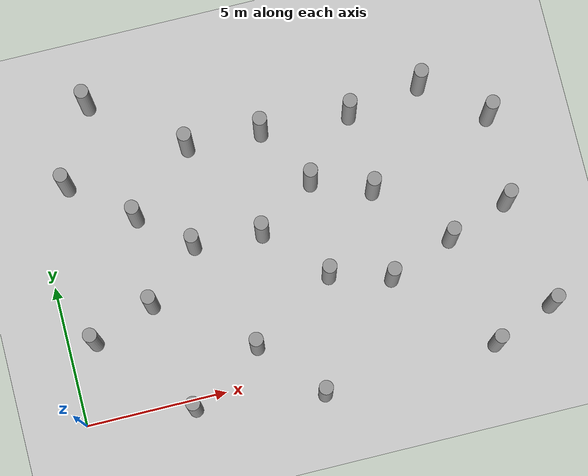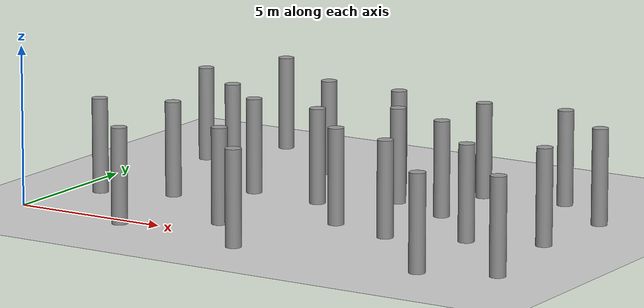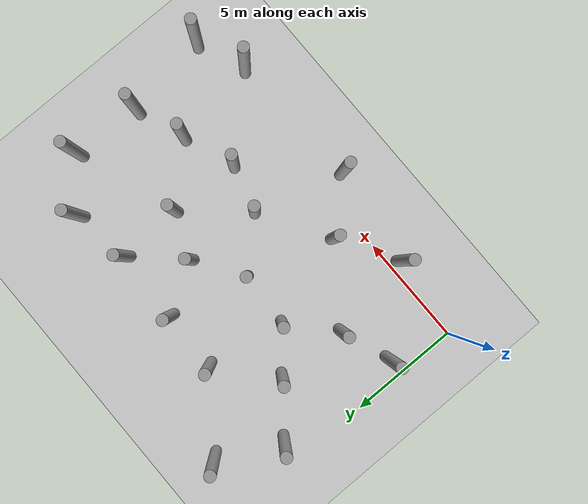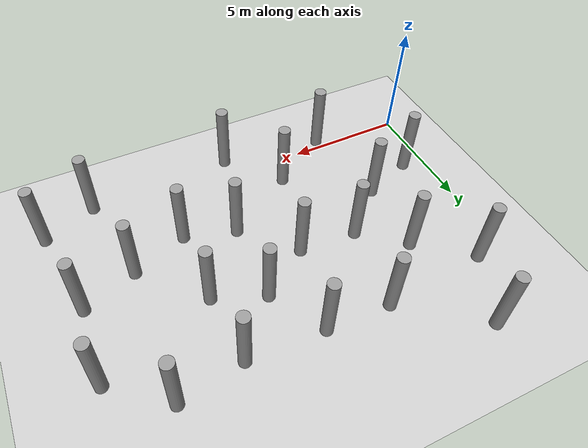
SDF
<sdf version="1.6">
 <world name="default">
  <model name="ground_plane">
   <static>1</static>
   <link name="link">
    <collision name="collision">
     <geometry><plane><normal>0 0 1</normal><size>100 100</size></plane></geometry>
     <surface><friction><ode><mu>100</mu><mu2>50</mu2></ode></friction></surface>
    </collision>
    <visual name="visual">
     <cast_shadows>0</cast_shadows>
     <geometry><plane><normal>0 0 1</normal><size>100 100</size></plane></geometry>
     <material>
      <script><uri>file://media/materials/scripts/gazebo.material</uri><name>Gazebo/Grey</name></script>
     </material>
    </visual>
   </link>
  </model>
  <model name="LjjForest">
   <link name="link_0_clone">
    <inertial>
     <mass>1</mass>
     <inertia><ixx>0.145833</ixx><ixy>0</ixy><ixz>0</ixz><iyy>0.145833</iyy><iyz>0</iyz><izz>0.125</izz></inertia>
    </inertial>
    <pose>-2.83119 0.981911 0 0 -0 0</pose>
    <visual name="visual">
     <geometry><cylinder><radius>0.25</radius><length>3</length></cylinder></geometry>
     <material>
      <lighting>1</lighting>
      <script><uri>file://media/materials/scripts/gazebo.material</uri><name>Gazebo/Grey</name></script>
      <shader type="vertex"><normal_map>__default__</normal_map></shader>
      <ambient>0.3 0.3 0.3 1</ambient>
      <diffuse>0.7 0.7 0.7 1</diffuse>
      <specular>0.01 0.01 0.01 1</specular>
      <emissive>0 0 0 1</emissive>
     </material>
    </visual>
    <collision name="collision">
     <geometry><cylinder><radius>0.25</radius><length>3</length></cylinder></geometry>
     <surface>
      <friction>
       <ode><mu>1</mu><mu2>1</mu2><fdir1>0 0 0</fdir1><slip1>0</slip1><slip2>0</slip2></ode>
       <torsional>
        <coefficient>1</coefficient>
        <patch_radius>0</patch_radius>
        <surface_radius>0</surface_radius>
        <use_patch_radius>1</use_patch_radius>
        <ode><slip>0</slip></ode>
       </torsional>
      </friction>
      <bounce><restitution_coefficient>0</restitution_coefficient><threshold>1e+06</threshold></bounce>
      <contact>
       <collide_without_contact>0</collide_without_contact>
       <collide_without_contact_bitmask>1</collide_without_contact_bitmask>
       <collide_bitmask>1</collide_bitmask>
       <ode>
        <soft_cfm>0</soft_cfm>
        <soft_erp>0.2</soft_erp>
        <kp>1e+13</kp>
        <kd>1</kd>
        <max_vel>0.01</max_vel>
        <min_depth>0</min_depth>
       </ode>
       <bullet>
        <split_impulse>1</split_impulse>
        <split_impulse_penetration_threshold>-0.01</split_impulse_penetration_threshold>
        <soft_cfm>0</soft_cfm>
        <soft_erp>0.2</soft_erp>
        <kp>1e+13</kp>
        <kd>1</kd>
       </bullet>
      </contact>
     </surface>
    </collision>
   </link>
   <link name="link_0_clone_0">
    <inertial>
     <mass>1</mass>
     <inertia><ixx>0.145833</ixx><ixy>0</ixy><ixz>0</ixz><iyy>0.145833</iyy><iyz>0</iyz><izz>0.125</izz></inertia>
    </inertial>
    <pose>-0.25253 2.5682 0 0 -0 0</pose>
    <visual name="visual">
     <geometry><cylinder><radius>0.25</radius><length>3</length></cylinder></geometry>
     <material>
      <lighting>1</lighting>
      <script><uri>file://media/materials/scripts/gazebo.material</uri><name>Gazebo/Grey</name></script>
      <shader type="vertex"><normal_map>__default__</normal_map></shader>
      <ambient>0.3 0.3 0.3 1</ambient>
      <diffuse>0.7 0.7 0.7 1</diffuse>
      <specular>0.01 0.01 0.01 1</specular>
      <emissive>0 0 0 1</emissive>
     </material>
    </visual>
    <collision name="collision">
     <geometry><cylinder><radius>0.25</radius><length>3</length></cylinder></geometry>
     <surface>
      <friction>
       <ode><mu>1</mu><mu2>1</mu2><fdir1>0 0 0</fdir1><slip1>0</slip1><slip2>0</slip2></ode>
       <torsional>
        <coefficient>1</coefficient>
        <patch_radius>0</patch_radius>
        <surface_radius>0</surface_radius>
        <use_patch_radius>1</use_patch_radius>
        <ode><slip>0</slip></ode>
       </torsional>
      </friction>
      <bounce><restitution_coefficient>0</restitution_coefficient><threshold>1e+06</threshold></bounce>
      <contact>
       <collide_without_contact>0</collide_without_contact>
       <collide_without_contact_bitmask>1</collide_without_contact_bitmask>
       <collide_bitmask>1</collide_bitmask>
       <ode>
        <soft_cfm>0</soft_cfm>
        <soft_erp>0.2</soft_erp>
        <kp>1e+13</kp>
        <kd>1</kd>
        <max_vel>0.01</max_vel>
        <min_depth>0</min_depth>
       </ode>
       <bullet>
        <split_impulse>1</split_impulse>
        <split_impulse_penetration_threshold>-0.01</split_impulse_penetration_threshold>
        <soft_cfm>0</soft_cfm>
        <soft_erp>0.2</soft_erp>
        <kp>1e+13</kp>
        <kd>1</kd>
       </bullet>
      </contact>
     </surface>
    </collision>
   </link>
   <link name="link_0_clone_2">
    <inertial>
     <mass>1</mass>
     <inertia><ixx>0.145833</ixx><ixy>0</ixy><ixz>0</ixz><iyy>0.145833</iyy><iyz>0</iyz><izz>0.125</izz></inertia>
    </inertial>
    <pose>1.64727 0.418921 0 0 -0 0</pose>
    <visual name="visual">
     <geometry><cylinder><radius>0.25</radius><length>3</length></cylinder></geometry>
     <material>
      <lighting>1</lighting>
      <script><uri>file://media/materials/scripts/gazebo.material</uri><name>Gazebo/Grey</name></script>
      <shader type="vertex"><normal_map>__default__</normal_map></shader>
      <ambient>0.3 0.3 0.3 1</ambient>
      <diffuse>0.7 0.7 0.7 1</diffuse>
      <specular>0.01 0.01 0.01 1</specular>
      <emissive>0 0 0 1</emissive>
     </material>
    </visual>
    <collision name="collision">
     <geometry><cylinder><radius>0.25</radius><length>3</length></cylinder></geometry>
     <surface>
      <friction>
       <ode><mu>1</mu><mu2>1</mu2><fdir1>0 0 0</fdir1><slip1>0</slip1><slip2>0</slip2></ode>
       <torsional>
        <coefficient>1</coefficient>
        <patch_radius>0</patch_radius>
        <surface_radius>0</surface_radius>
        <use_patch_radius>1</use_patch_radius>
        <ode><slip>0</slip></ode>
       </torsional>
      </friction>
      <bounce><restitution_coefficient>0</restitution_coefficient><threshold>1e+06</threshold></bounce>
      <contact>
       <collide_without_contact>0</collide_without_contact>
       <collide_without_contact_bitmask>1</collide_without_contact_bitmask>
       <collide_bitmask>1</collide_bitmask>
       <ode>
        <soft_cfm>0</soft_cfm>
        <soft_erp>0.2</soft_erp>
        <kp>1e+13</kp>
        <kd>1</kd>
        <max_vel>0.01</max_vel>
        <min_depth>0</min_depth>
       </ode>
       <bullet>
        <split_impulse>1</split_impulse>
        <split_impulse_penetration_threshold>-0.01</split_impulse_penetration_threshold>
        <soft_cfm>0</soft_cfm>
        <soft_erp>0.2</soft_erp>
        <kp>1e+13</kp>
        <kd>1</kd>
       </bullet>
      </contact>
     </surface>
    </collision>
   </link>
   <link name="link_0_clone_23">
    <inertial>
     <mass>1</mass>
     <inertia><ixx>0.145833</ixx><ixy>0</ixy><ixz>0</ixz><iyy>0.145833</iyy><iyz>0</iyz><izz>0.125</izz></inertia>
    </inertial>
    <pose>-5.66615 4.05911 0 0 -0 0</pose>
    <visual name="visual">
     <geometry><cylinder><radius>0.25</radius><length>3</length></cylinder></geometry>
     <material>
      <lighting>1</lighting>
      <script><uri>file://media/materials/scripts/gazebo.material</uri><name>Gazebo/Grey</name></script>
      <shader type="vertex"><normal_map>__default__</normal_map></shader>
      <ambient>0.3 0.3 0.3 1</ambient>
      <diffuse>0.7 0.7 0.7 1</diffuse>
      <specular>0.01 0.01 0.01 1</specular>
      <emissive>0 0 0 1</emissive>
     </material>
    </visual>
    <collision name="collision">
     <geometry><cylinder><radius>0.25</radius><length>3</length></cylinder></geometry>
     <surface>
      <friction>
       <ode><mu>1</mu><mu2>1</mu2><fdir1>0 0 0</fdir1><slip1>0</slip1><slip2>0</slip2></ode>
       <torsional>
        <coefficient>1</coefficient>
        <patch_radius>0</patch_radius>
        <surface_radius>0</surface_radius>
        <use_patch_radius>1</use_patch_radius>
        <ode><slip>0</slip></ode>
       </torsional>
      </friction>
      <bounce><restitution_coefficient>0</restitution_coefficient><threshold>1e+06</threshold></bounce>
      <contact>
       <collide_without_contact>0</collide_without_contact>
       <collide_without_contact_bitmask>1</collide_without_contact_bitmask>
       <collide_bitmask>1</collide_bitmask>
       <ode>
        <soft_cfm>0</soft_cfm>
        <soft_erp>0.2</soft_erp>
        <kp>1e+13</kp>
        <kd>1</kd>
        <max_vel>0.01</max_vel>
        <min_depth>0</min_depth>
       </ode>
       <bullet>
        <split_impulse>1</split_impulse>
        <split_impulse_penetration_threshold>-0.01</split_impulse_penetration_threshold>
        <soft_cfm>0</soft_cfm>
        <soft_erp>0.2</soft_erp>
        <kp>1e+13</kp>
        <kd>1</kd>
       </bullet>
      </contact>
     </surface>
    </collision>
   </link>
   <link name="link_0_clone_24">
    <inertial>
     <mass>1</mass>
     <inertia><ixx>0.145833</ixx><ixy>0</ixy><ixz>0</ixz><iyy>0.145833</iyy><iyz>0</iyz><izz>0.125</izz></inertia>
    </inertial>
    <pose>2.92874 7.75131 0 0 -0 0</pose>
    <visual name="visual">
     <geometry><cylinder><radius>0.25</radius><length>3</length></cylinder></geometry>
     <material>
      <lighting>1</lighting>
      <script><uri>file://media/materials/scripts/gazebo.material</uri><name>Gazebo/Grey</name></script>
      <shader type="vertex"><normal_map>__default__</normal_map></shader>
      <ambient>0.3 0.3 0.3 1</ambient>
      <diffuse>0.7 0.7 0.7 1</diffuse>
      <specular>0.01 0.01 0.01 1</specular>
      <emissive>0 0 0 1</emissive>
     </material>
    </visual>
    <collision name="collision">
     <geometry><cylinder><radius>0.25</radius><length>3</length></cylinder></geometry>
     <surface>
      <friction>
       <ode><mu>1</mu><mu2>1</mu2><fdir1>0 0 0</fdir1><slip1>0</slip1><slip2>0</slip2></ode>
       <torsional>
        <coefficient>1</coefficient>
        <patch_radius>0</patch_radius>
        <surface_radius>0</surface_radius>
        <use_patch_radius>1</use_patch_radius>
        <ode><slip>0</slip></ode>
       </torsional>
      </friction>
      <bounce><restitution_coefficient>0</restitution_coefficient><threshold>1e+06</threshold></bounce>
      <contact>
       <collide_without_contact>0</collide_without_contact>
       <collide_without_contact_bitmask>1</collide_without_contact_bitmask>
       <collide_bitmask>1</collide_bitmask>
       <ode>
        <soft_cfm>0</soft_cfm>
        <soft_erp>0.2</soft_erp>
        <kp>1e+13</kp>
        <kd>1</kd>
        <max_vel>0.01</max_vel>
        <min_depth>0</min_depth>
       </ode>
       <bullet>
        <split_impulse>1</split_impulse>
        <split_impulse_penetration_threshold>-0.01</split_impulse_penetration_threshold>
        <soft_cfm>0</soft_cfm>
        <soft_erp>0.2</soft_erp>
        <kp>1e+13</kp>
        <kd>1</kd>
       </bullet>
      </contact>
     </surface>
    </collision>
   </link>
   <link name="link_0_clone_25">
    <inertial>
     <mass>1</mass>
     <inertia><ixx>0.145833</ixx><ixy>0</ixy><ixz>0</ixz><iyy>0.145833</iyy><iyz>0</iyz><izz>0.125</izz></inertia>
    </inertial>
    <pose>4.82479 9.76951 0 0 -0 0</pose>
    <visual name="visual">
     <geometry><cylinder><radius>0.25</radius><length>3</length></cylinder></geometry>
     <material>
      <lighting>1</lighting>
      <script><uri>file://media/materials/scripts/gazebo.material</uri><name>Gazebo/Grey</name></script>
      <shader type="vertex"><normal_map>__default__</normal_map></shader>
      <ambient>0.3 0.3 0.3 1</ambient>
      <diffuse>0.7 0.7 0.7 1</diffuse>
      <specular>0.01 0.01 0.01 1</specular>
      <emissive>0 0 0 1</emissive>
     </material>
    </visual>
    <collision name="collision">
     <geometry><cylinder><radius>0.25</radius><length>3</length></cylinder></geometry>
     <surface>
      <friction>
       <ode><mu>1</mu><mu2>1</mu2><fdir1>0 0 0</fdir1><slip1>0</slip1><slip2>0</slip2></ode>
       <torsional>
        <coefficient>1</coefficient>
        <patch_radius>0</patch_radius>
        <surface_radius>0</surface_radius>
        <use_patch_radius>1</use_patch_radius>
        <ode><slip>0</slip></ode>
       </torsional>
      </friction>
      <bounce><restitution_coefficient>0</restitution_coefficient><threshold>1e+06</threshold></bounce>
      <contact>
       <collide_without_contact>0</collide_without_contact>
       <collide_without_contact_bitmask>1</collide_without_contact_bitmask>
       <collide_bitmask>1</collide_bitmask>
       <ode>
        <soft_cfm>0</soft_cfm>
        <soft_erp>0.2</soft_erp>
        <kp>1e+13</kp>
        <kd>1</kd>
        <max_vel>0.01</max_vel>
        <min_depth>0</min_depth>
       </ode>
       <bullet>
        <split_impulse>1</split_impulse>
        <split_impulse_penetration_threshold>-0.01</split_impulse_penetration_threshold>
        <soft_cfm>0</soft_cfm>
        <soft_erp>0.2</soft_erp>
        <kp>1e+13</kp>
        <kd>1</kd>
       </bullet>
      </contact>
     </surface>
    </collision>
   </link>
   <link name="link_0_clone_26">
    <inertial>
     <mass>1</mass>
     <inertia><ixx>0.145833</ixx><ixy>0</ixy><ixz>0</ixz><iyy>0.145833</iyy><iyz>0</iyz><izz>0.125</izz></inertia>
    </inertial>
    <pose>1.66794 9.91533 0 0 -0 0</pose>
    <visual name="visual">
     <geometry><cylinder><radius>0.25</radius><length>3</length></cylinder></geometry>
     <material>
      <lighting>1</lighting>
      <script><uri>file://media/materials/scripts/gazebo.material</uri><name>Gazebo/Grey</name></script>
      <shader type="vertex"><normal_map>__default__</normal_map></shader>
      <ambient>0.3 0.3 0.3 1</ambient>
      <diffuse>0.7 0.7 0.7 1</diffuse>
      <specular>0.01 0.01 0.01 1</specular>
      <emissive>0 0 0 1</emissive>
     </material>
    </visual>
    <collision name="collision">
     <geometry><cylinder><radius>0.25</radius><length>3</length></cylinder></geometry>
     <surface>
      <friction>
       <ode><mu>1</mu><mu2>1</mu2><fdir1>0 0 0</fdir1><slip1>0</slip1><slip2>0</slip2></ode>
       <torsional>
        <coefficient>1</coefficient>
        <patch_radius>0</patch_radius>
        <surface_radius>0</surface_radius>
        <use_patch_radius>1</use_patch_radius>
        <ode><slip>0</slip></ode>
       </torsional>
      </friction>
      <bounce><restitution_coefficient>0</restitution_coefficient><threshold>1e+06</threshold></bounce>
      <contact>
       <collide_without_contact>0</collide_without_contact>
       <collide_without_contact_bitmask>1</collide_without_contact_bitmask>
       <collide_bitmask>1</collide_bitmask>
       <ode>
        <soft_cfm>0</soft_cfm>
        <soft_erp>0.2</soft_erp>
        <kp>1e+13</kp>
        <kd>1</kd>
        <max_vel>0.01</max_vel>
        <min_depth>0</min_depth>
       </ode>
       <bullet>
        <split_impulse>1</split_impulse>
        <split_impulse_penetration_threshold>-0.01</split_impulse_penetration_threshold>
        <soft_cfm>0</soft_cfm>
        <soft_erp>0.2</soft_erp>
        <kp>1e+13</kp>
        <kd>1</kd>
       </bullet>
      </contact>
     </surface>
    </collision>
   </link>
   <link name="link_0_clone_27">
    <inertial>
     <mass>1</mass>
     <inertia><ixx>0.145833</ixx><ixy>0</ixy><ixz>0</ixz><iyy>0.145833</iyy><iyz>0</iyz><izz>0.125</izz></inertia>
    </inertial>
    <pose>-0.975859 10.0087 0 0 -0 0</pose>
    <visual name="visual">
     <geometry><cylinder><radius>0.25</radius><length>3</length></cylinder></geometry>
     <material>
      <lighting>1</lighting>
      <script><uri>file://media/materials/scripts/gazebo.material</uri><name>Gazebo/Grey</name></script>
      <shader type="vertex"><normal_map>__default__</normal_map></shader>
      <ambient>0.3 0.3 0.3 1</ambient>
      <diffuse>0.7 0.7 0.7 1</diffuse>
      <specular>0.01 0.01 0.01 1</specular>
      <emissive>0 0 0 1</emissive>
     </material>
    </visual>
    <collision name="collision">
     <geometry><cylinder><radius>0.25</radius><length>3</length></cylinder></geometry>
     <surface>
      <friction>
       <ode><mu>1</mu><mu2>1</mu2><fdir1>0 0 0</fdir1><slip1>0</slip1><slip2>0</slip2></ode>
       <torsional>
        <coefficient>1</coefficient>
        <patch_radius>0</patch_radius>
        <surface_radius>0</surface_radius>
        <use_patch_radius>1</use_patch_radius>
        <ode><slip>0</slip></ode>
       </torsional>
      </friction>
      <bounce><restitution_coefficient>0</restitution_coefficient><threshold>1e+06</threshold></bounce>
      <contact>
       <collide_without_contact>0</collide_without_contact>
       <collide_without_contact_bitmask>1</collide_without_contact_bitmask>
       <collide_bitmask>1</collide_bitmask>
       <ode>
        <soft_cfm>0</soft_cfm>
        <soft_erp>0.2</soft_erp>
        <kp>1e+13</kp>
        <kd>1</kd>
        <max_vel>0.01</max_vel>
        <min_depth>0</min_depth>
       </ode>
       <bullet>
        <split_impulse>1</split_impulse>
        <split_impulse_penetration_threshold>-0.01</split_impulse_penetration_threshold>
        <soft_cfm>0</soft_cfm>
        <soft_erp>0.2</soft_erp>
        <kp>1e+13</kp>
        <kd>1</kd>
       </bullet>
      </contact>
     </surface>
    </collision>
   </link>
   <link name="link_0_clone_28">
    <inertial>
     <mass>1</mass>
     <inertia><ixx>0.145833</ixx><ixy>0</ixy><ixz>0</ixz><iyy>0.145833</iyy><iyz>0</iyz><izz>0.125</izz></inertia>
    </inertial>
    <pose>-3.28832 7.97521 0 0 -0 0</pose>
    <visual name="visual">
     <geometry><cylinder><radius>0.25</radius><length>3</length></cylinder></geometry>
     <material>
      <lighting>1</lighting>
      <script><uri>file://media/materials/scripts/gazebo.material</uri><name>Gazebo/Grey</name></script>
      <shader type="vertex"><normal_map>__default__</normal_map></shader>
      <ambient>0.3 0.3 0.3 1</ambient>
      <diffuse>0.7 0.7 0.7 1</diffuse>
      <specular>0.01 0.01 0.01 1</specular>
      <emissive>0 0 0 1</emissive>
     </material>
    </visual>
    <collision name="collision">
     <geometry><cylinder><radius>0.25</radius><length>3</length></cylinder></geometry>
     <surface>
      <friction>
       <ode><mu>1</mu><mu2>1</mu2><fdir1>0 0 0</fdir1><slip1>0</slip1><slip2>0</slip2></ode>
       <torsional>
        <coefficient>1</coefficient>
        <patch_radius>0</patch_radius>
        <surface_radius>0</surface_radius>
        <use_patch_radius>1</use_patch_radius>
        <ode><slip>0</slip></ode>
       </torsional>
      </friction>
      <bounce><restitution_coefficient>0</restitution_coefficient><threshold>1e+06</threshold></bounce>
      <contact>
       <collide_without_contact>0</collide_without_contact>
       <collide_without_contact_bitmask>1</collide_without_contact_bitmask>
       <collide_bitmask>1</collide_bitmask>
       <ode>
        <soft_cfm>0</soft_cfm>
        <soft_erp>0.2</soft_erp>
        <kp>1e+13</kp>
        <kd>1</kd>
        <max_vel>0.01</max_vel>
        <min_depth>0</min_depth>
       </ode>
       <bullet>
        <split_impulse>1</split_impulse>
        <split_impulse_penetration_threshold>-0.01</split_impulse_penetration_threshold>
        <soft_cfm>0</soft_cfm>
        <soft_erp>0.2</soft_erp>
        <kp>1e+13</kp>
        <kd>1</kd>
       </bullet>
      </contact>
     </surface>
    </collision>
   </link>
   <link name="link_0_clone_29">
    <inertial>
     <mass>1</mass>
     <inertia><ixx>0.145833</ixx><ixy>0</ixy><ixz>0</ixz><iyy>0.145833</iyy><iyz>0</iyz><izz>0.125</izz></inertia>
    </inertial>
    <pose>-5.38645 9.63545 0 0 -0 0</pose>
    <visual name="visual">
     <geometry><cylinder><radius>0.25</radius><length>3</length></cylinder></geometry>
     <material>
      <lighting>1</lighting>
      <script><uri>file://media/materials/scripts/gazebo.material</uri><name>Gazebo/Grey</name></script>
      <shader type="vertex"><normal_map>__default__</normal_map></shader>
      <ambient>0.3 0.3 0.3 1</ambient>
      <diffuse>0.7 0.7 0.7 1</diffuse>
      <specular>0.01 0.01 0.01 1</specular>
      <emissive>0 0 0 1</emissive>
     </material>
    </visual>
    <collision name="collision">
     <geometry><cylinder><radius>0.25</radius><length>3</length></cylinder></geometry>
     <surface>
      <friction>
       <ode><mu>1</mu><mu2>1</mu2><fdir1>0 0 0</fdir1><slip1>0</slip1><slip2>0</slip2></ode>
       <torsional>
        <coefficient>1</coefficient>
        <patch_radius>0</patch_radius>
        <surface_radius>0</surface_radius>
        <use_patch_radius>1</use_patch_radius>
        <ode><slip>0</slip></ode>
       </torsional>
      </friction>
      <bounce><restitution_coefficient>0</restitution_coefficient><threshold>1e+06</threshold></bounce>
      <contact>
       <collide_without_contact>0</collide_without_contact>
       <collide_without_contact_bitmask>1</collide_without_contact_bitmask>
       <collide_bitmask>1</collide_bitmask>
       <ode>
        <soft_cfm>0</soft_cfm>
        <soft_erp>0.2</soft_erp>
        <kp>1e+13</kp>
        <kd>1</kd>
        <max_vel>0.01</max_vel>
        <min_depth>0</min_depth>
       </ode>
       <bullet>
        <split_impulse>1</split_impulse>
        <split_impulse_penetration_threshold>-0.01</split_impulse_penetration_threshold>
        <soft_cfm>0</soft_cfm>
        <soft_erp>0.2</soft_erp>
        <kp>1e+13</kp>
        <kd>1</kd>
       </bullet>
      </contact>
     </surface>
    </collision>
   </link>
   <link name="link_0_clone_3">
    <inertial>
     <mass>1</mass>
     <inertia><ixx>0.145833</ixx><ixy>0</ixy><ixz>0</ixz><iyy>0.145833</iyy><iyz>0</iyz><izz>0.125</izz></inertia>
    </inertial>
    <pose>2.76214 4.38882 0 0 -0 0</pose>
    <visual name="visual">
     <geometry><cylinder><radius>0.25</radius><length>3</length></cylinder></geometry>
     <material>
      <lighting>1</lighting>
      <script><uri>file://media/materials/scripts/gazebo.material</uri><name>Gazebo/Grey</name></script>
      <shader type="vertex"><normal_map>__default__</normal_map></shader>
      <ambient>0.3 0.3 0.3 1</ambient>
      <diffuse>0.7 0.7 0.7 1</diffuse>
      <specular>0.01 0.01 0.01 1</specular>
      <emissive>0 0 0 1</emissive>
     </material>
    </visual>
    <collision name="collision">
     <geometry><cylinder><radius>0.25</radius><length>3</length></cylinder></geometry>
     <surface>
      <friction>
       <ode><mu>1</mu><mu2>1</mu2><fdir1>0 0 0</fdir1><slip1>0</slip1><slip2>0</slip2></ode>
       <torsional>
        <coefficient>1</coefficient>
        <patch_radius>0</patch_radius>
        <surface_radius>0</surface_radius>
        <use_patch_radius>1</use_patch_radius>
        <ode><slip>0</slip></ode>
       </torsional>
      </friction>
      <bounce><restitution_coefficient>0</restitution_coefficient><threshold>1e+06</threshold></bounce>
      <contact>
       <collide_without_contact>0</collide_without_contact>
       <collide_without_contact_bitmask>1</collide_without_contact_bitmask>
       <collide_bitmask>1</collide_bitmask>
       <ode>
        <soft_cfm>0</soft_cfm>
        <soft_erp>0.2</soft_erp>
        <kp>1e+13</kp>
        <kd>1</kd>
        <max_vel>0.01</max_vel>
        <min_depth>0</min_depth>
       </ode>
       <bullet>
        <split_impulse>1</split_impulse>
        <split_impulse_penetration_threshold>-0.01</split_impulse_penetration_threshold>
        <soft_cfm>0</soft_cfm>
        <soft_erp>0.2</soft_erp>
        <kp>1e+13</kp>
        <kd>1</kd>
       </bullet>
      </contact>
     </surface>
    </collision>
   </link>
   <link name="link_0_clone_30">
    <inertial>
     <mass>1</mass>
     <inertia><ixx>0.145833</ixx><ixy>0</ixy><ixz>0</ixz><iyy>0.145833</iyy><iyz>0</iyz><izz>0.125</izz></inertia>
    </inertial>
    <pose>4.96935 6.93626 0 0 -0 0</pose>
    <visual name="visual">
     <geometry><cylinder><radius>0.25</radius><length>3</length></cylinder></geometry>
     <material>
      <lighting>1</lighting>
      <script><uri>file://media/materials/scripts/gazebo.material</uri><name>Gazebo/Grey</name></script>
      <shader type="vertex"><normal_map>__default__</normal_map></shader>
      <ambient>0.3 0.3 0.3 1</ambient>
      <diffuse>0.7 0.7 0.7 1</diffuse>
      <specular>0.01 0.01 0.01 1</specular>
      <emissive>0 0 0 1</emissive>
     </material>
    </visual>
    <collision name="collision">
     <geometry><cylinder><radius>0.25</radius><length>3</length></cylinder></geometry>
     <surface>
      <friction>
       <ode><mu>1</mu><mu2>1</mu2><fdir1>0 0 0</fdir1><slip1>0</slip1><slip2>0</slip2></ode>
       <torsional>
        <coefficient>1</coefficient>
        <patch_radius>0</patch_radius>
        <surface_radius>0</surface_radius>
        <use_patch_radius>1</use_patch_radius>
        <ode><slip>0</slip></ode>
       </torsional>
      </friction>
      <bounce><restitution_coefficient>0</restitution_coefficient><threshold>1e+06</threshold></bounce>
      <contact>
       <collide_without_contact>0</collide_without_contact>
       <collide_without_contact_bitmask>1</collide_without_contact_bitmask>
       <collide_bitmask>1</collide_bitmask>
       <ode>
        <soft_cfm>0</soft_cfm>
        <soft_erp>0.2</soft_erp>
        <kp>1e+13</kp>
        <kd>1</kd>
        <max_vel>0.01</max_vel>
        <min_depth>0</min_depth>
       </ode>
       <bullet>
        <split_impulse>1</split_impulse>
        <split_impulse_penetration_threshold>-0.01</split_impulse_penetration_threshold>
        <soft_cfm>0</soft_cfm>
        <soft_erp>0.2</soft_erp>
        <kp>1e+13</kp>
        <kd>1</kd>
       </bullet>
      </contact>
     </surface>
    </collision>
   </link>
   <link name="link_0_clone_31">
    <inertial>
     <mass>1</mass>
     <inertia><ixx>0.145833</ixx><ixy>0</ixy><ixz>0</ixz><iyy>0.145833</iyy><iyz>0</iyz><izz>0.125</izz></inertia>
    </inertial>
    <pose>4.87388 3.77106 0 0 -0 0</pose>
    <visual name="visual">
     <geometry><cylinder><radius>0.25</radius><length>3</length></cylinder></geometry>
     <material>
      <lighting>1</lighting>
      <script><uri>file://media/materials/scripts/gazebo.material</uri><name>Gazebo/Grey</name></script>
      <shader type="vertex"><normal_map>__default__</normal_map></shader>
      <ambient>0.3 0.3 0.3 1</ambient>
      <diffuse>0.7 0.7 0.7 1</diffuse>
      <specular>0.01 0.01 0.01 1</specular>
      <emissive>0 0 0 1</emissive>
     </material>
    </visual>
    <collision name="collision">
     <geometry><cylinder><radius>0.25</radius><length>3</length></cylinder></geometry>
     <surface>
      <friction>
       <ode><mu>1</mu><mu2>1</mu2><fdir1>0 0 0</fdir1><slip1>0</slip1><slip2>0</slip2></ode>
       <torsional>
        <coefficient>1</coefficient>
        <patch_radius>0</patch_radius>
        <surface_radius>0</surface_radius>
        <use_patch_radius>1</use_patch_radius>
        <ode><slip>0</slip></ode>
       </torsional>
      </friction>
      <bounce><restitution_coefficient>0</restitution_coefficient><threshold>1e+06</threshold></bounce>
      <contact>
       <collide_without_contact>0</collide_without_contact>
       <collide_without_contact_bitmask>1</collide_without_contact_bitmask>
       <collide_bitmask>1</collide_bitmask>
       <ode>
        <soft_cfm>0</soft_cfm>
        <soft_erp>0.2</soft_erp>
        <kp>1e+13</kp>
        <kd>1</kd>
        <max_vel>0.01</max_vel>
        <min_depth>0</min_depth>
       </ode>
       <bullet>
        <split_impulse>1</split_impulse>
        <split_impulse_penetration_threshold>-0.01</split_impulse_penetration_threshold>
        <soft_cfm>0</soft_cfm>
        <soft_erp>0.2</soft_erp>
        <kp>1e+13</kp>
        <kd>1</kd>
       </bullet>
      </contact>
     </surface>
    </collision>
   </link>
   <link name="link_0_clone_4">
    <inertial>
     <mass>1</mass>
     <inertia><ixx>0.145833</ixx><ixy>0</ixy><ixz>0</ixz><iyy>0.145833</iyy><iyz>0</iyz><izz>0.125</izz></inertia>
    </inertial>
    <pose>0.858928 6.3824 0 0 -0 0</pose>
    <visual name="visual">
     <geometry><cylinder><radius>0.25</radius><length>3</length></cylinder></geometry>
     <material>
      <lighting>1</lighting>
      <script><uri>file://media/materials/scripts/gazebo.material</uri><name>Gazebo/Grey</name></script>
      <shader type="vertex"><normal_map>__default__</normal_map></shader>
      <ambient>0.3 0.3 0.3 1</ambient>
      <diffuse>0.7 0.7 0.7 1</diffuse>
      <specular>0.01 0.01 0.01 1</specular>
      <emissive>0 0 0 1</emissive>
     </material>
    </visual>
    <collision name="collision">
     <geometry><cylinder><radius>0.25</radius><length>3</length></cylinder></geometry>
     <surface>
      <friction>
       <ode><mu>1</mu><mu2>1</mu2><fdir1>0 0 0</fdir1><slip1>0</slip1><slip2>0</slip2></ode>
       <torsional>
        <coefficient>1</coefficient>
        <patch_radius>0</patch_radius>
        <surface_radius>0</surface_radius>
        <use_patch_radius>1</use_patch_radius>
        <ode><slip>0</slip></ode>
       </torsional>
      </friction>
      <bounce><restitution_coefficient>0</restitution_coefficient><threshold>1e+06</threshold></bounce>
      <contact>
       <collide_without_contact>0</collide_without_contact>
       <collide_without_contact_bitmask>1</collide_without_contact_bitmask>
       <collide_bitmask>1</collide_bitmask>
       <ode>
        <soft_cfm>0</soft_cfm>
        <soft_erp>0.2</soft_erp>
        <kp>1e+13</kp>
        <kd>1</kd>
        <max_vel>0.01</max_vel>
        <min_depth>0</min_depth>
       </ode>
       <bullet>
        <split_impulse>1</split_impulse>
        <split_impulse_penetration_threshold>-0.01</split_impulse_penetration_threshold>
        <soft_cfm>0</soft_cfm>
        <soft_erp>0.2</soft_erp>
        <kp>1e+13</kp>
        <kd>1</kd>
       </bullet>
      </contact>
     </surface>
    </collision>
   </link>
   <link name="link_0_clone_5">
    <inertial>
     <mass>1</mass>
     <inertia><ixx>0.145833</ixx><ixy>0</ixy><ixz>0</ixz><iyy>0.145833</iyy><iyz>0</iyz><izz>0.125</izz></inertia>
    </inertial>
    <pose>-1.56065 6.53618 0 0 -0 0</pose>
    <visual name="visual">
     <geometry><cylinder><radius>0.25</radius><length>3</length></cylinder></geometry>
     <material>
      <lighting>1</lighting>
      <script><uri>file://media/materials/scripts/gazebo.material</uri><name>Gazebo/Grey</name></script>
      <shader type="vertex"><normal_map>__default__</normal_map></shader>
      <ambient>0.3 0.3 0.3 1</ambient>
      <diffuse>0.7 0.7 0.7 1</diffuse>
      <specular>0.01 0.01 0.01 1</specular>
      <emissive>0 0 0 1</emissive>
     </material>
    </visual>
    <collision name="collision">
     <geometry><cylinder><radius>0.25</radius><length>3</length></cylinder></geometry>
     <surface>
      <friction>
       <ode><mu>1</mu><mu2>1</mu2><fdir1>0 0 0</fdir1><slip1>0</slip1><slip2>0</slip2></ode>
       <torsional>
        <coefficient>1</coefficient>
        <patch_radius>0</patch_radius>
        <surface_radius>0</surface_radius>
        <use_patch_radius>1</use_patch_radius>
        <ode><slip>0</slip></ode>
       </torsional>
      </friction>
      <bounce><restitution_coefficient>0</restitution_coefficient><threshold>1e+06</threshold></bounce>
      <contact>
       <collide_without_contact>0</collide_without_contact>
       <collide_without_contact_bitmask>1</collide_without_contact_bitmask>
       <collide_bitmask>1</collide_bitmask>
       <ode>
        <soft_cfm>0</soft_cfm>
        <soft_erp>0.2</soft_erp>
        <kp>1e+13</kp>
        <kd>1</kd>
        <max_vel>0.01</max_vel>
        <min_depth>0</min_depth>
       </ode>
       <bullet>
        <split_impulse>1</split_impulse>
        <split_impulse_penetration_threshold>-0.01</split_impulse_penetration_threshold>
        <soft_cfm>0</soft_cfm>
        <soft_erp>0.2</soft_erp>
        <kp>1e+13</kp>
        <kd>1</kd>
       </bullet>
      </contact>
     </surface>
    </collision>
   </link>
   <link name="link_0_clone_6">
    <inertial>
     <mass>1</mass>
     <inertia><ixx>0.145833</ixx><ixy>0</ixy><ixz>0</ixz><iyy>0.145833</iyy><iyz>0</iyz><izz>0.125</izz></inertia>
    </inertial>
    <pose>-3.46215 4.85006 0 0 -0 0</pose>
    <visual name="visual">
     <geometry><cylinder><radius>0.25</radius><length>3</length></cylinder></geometry>
     <material>
      <lighting>1</lighting>
      <script><uri>file://media/materials/scripts/gazebo.material</uri><name>Gazebo/Grey</name></script>
      <shader type="vertex"><normal_map>__default__</normal_map></shader>
      <ambient>0.3 0.3 0.3 1</ambient>
      <diffuse>0.7 0.7 0.7 1</diffuse>
      <specular>0.01 0.01 0.01 1</specular>
      <emissive>0 0 0 1</emissive>
     </material>
    </visual>
    <collision name="collision">
     <geometry><cylinder><radius>0.25</radius><length>3</length></cylinder></geometry>
     <surface>
      <friction>
       <ode><mu>1</mu><mu2>1</mu2><fdir1>0 0 0</fdir1><slip1>0</slip1><slip2>0</slip2></ode>
       <torsional>
        <coefficient>1</coefficient>
        <patch_radius>0</patch_radius>
        <surface_radius>0</surface_radius>
        <use_patch_radius>1</use_patch_radius>
        <ode><slip>0</slip></ode>
       </torsional>
      </friction>
      <bounce><restitution_coefficient>0</restitution_coefficient><threshold>1e+06</threshold></bounce>
      <contact>
       <collide_without_contact>0</collide_without_contact>
       <collide_without_contact_bitmask>1</collide_without_contact_bitmask>
       <collide_bitmask>1</collide_bitmask>
       <ode>
        <soft_cfm>0</soft_cfm>
        <soft_erp>0.2</soft_erp>
        <kp>1e+13</kp>
        <kd>1</kd>
        <max_vel>0.01</max_vel>
        <min_depth>0</min_depth>
       </ode>
       <bullet>
        <split_impulse>1</split_impulse>
        <split_impulse_penetration_threshold>-0.01</split_impulse_penetration_threshold>
        <soft_cfm>0</soft_cfm>
        <soft_erp>0.2</soft_erp>
        <kp>1e+13</kp>
        <kd>1</kd>
       </bullet>
      </contact>
     </surface>
    </collision>
   </link>
   <static>0</static>
   <pose>6.66629 -1.33639 1.49999 0 -0 0.002431</pose>
  </model>
  <model name="LjjForest_1">
   <link name="link_0_clone_21">
    <inertial>
     <mass>1</mass>
     <inertia><ixx>0.145833</ixx><ixy>0</ixy><ixz>0</ixz><iyy>0.145833</iyy><iyz>0</iyz><izz>0.125</izz></inertia>
    </inertial>
    <pose>-4.11405 -10.0375 0 0 -0 0</pose>
    <visual name="visual">
     <geometry><cylinder><radius>0.25</radius><length>3</length></cylinder></geometry>
     <material>
      <lighting>1</lighting>
      <script><uri>file://media/materials/scripts/gazebo.material</uri><name>Gazebo/Grey</name></script>
      <shader type="vertex"><normal_map>__default__</normal_map></shader>
      <ambient>0.3 0.3 0.3 1</ambient>
      <diffuse>0.7 0.7 0.7 1</diffuse>
      <specular>0.01 0.01 0.01 1</specular>
      <emissive>0 0 0 1</emissive>
     </material>
    </visual>
    <collision name="collision">
     <geometry><cylinder><radius>0.25</radius><length>3</length></cylinder></geometry>
     <surface>
      <friction>
       <ode><mu>1</mu><mu2>1</mu2><fdir1>0 0 0</fdir1><slip1>0</slip1><slip2>0</slip2></ode>
       <torsional>
        <coefficient>1</coefficient>
        <patch_radius>0</patch_radius>
        <surface_radius>0</surface_radius>
        <use_patch_radius>1</use_patch_radius>
        <ode><slip>0</slip></ode>
       </torsional>
      </friction>
      <bounce><restitution_coefficient>0</restitution_coefficient><threshold>1e+06</threshold></bounce>
      <contact>
       <collide_without_contact>0</collide_without_contact>
       <collide_without_contact_bitmask>1</collide_without_contact_bitmask>
       <collide_bitmask>1</collide_bitmask>
       <ode>
        <soft_cfm>0</soft_cfm>
        <soft_erp>0.2</soft_erp>
        <kp>1e+13</kp>
        <kd>1</kd>
        <max_vel>0.01</max_vel>
        <min_depth>0</min_depth>
       </ode>
       <bullet>
        <split_impulse>1</split_impulse>
        <split_impulse_penetration_threshold>-0.01</split_impulse_penetration_threshold>
        <soft_cfm>0</soft_cfm>
        <soft_erp>0.2</soft_erp>
        <kp>1e+13</kp>
        <kd>1</kd>
       </bullet>
      </contact>
     </surface>
    </collision>
   </link>
   <static>0</static>
   <pose>6.6881 21.007 1.49999 0 -0 0.002263</pose>
  </model>
  <model name="LjjForest_3">
   <link name="link_0">
    <inertial>
     <mass>1</mass>
     <inertia><ixx>0.145833</ixx><ixy>0</ixy><ixz>0</ixz><iyy>0.145833</iyy><iyz>0</iyz><izz>0.125</izz></inertia>
    </inertial>
    <pose>-5.02717 0.116957 0 0 -0 0</pose>
    <visual name="visual">
     <geometry><cylinder><radius>0.25</radius><length>3</length></cylinder></geometry>
     <material>
      <lighting>1</lighting>
      <script><uri>file://media/materials/scripts/gazebo.material</uri><name>Gazebo/Grey</name></script>
      <shader type="vertex"><normal_map>__default__</normal_map></shader>
      <ambient>0.3 0.3 0.3 1</ambient>
      <diffuse>0.7 0.7 0.7 1</diffuse>
      <specular>0.01 0.01 0.01 1</specular>
      <emissive>0 0 0 1</emissive>
     </material>
    </visual>
    <collision name="collision">
     <geometry><cylinder><radius>0.25</radius><length>3</length></cylinder></geometry>
     <surface>
      <friction>
       <ode><mu>1</mu><mu2>1</mu2><fdir1>0 0 0</fdir1><slip1>0</slip1><slip2>0</slip2></ode>
       <torsional>
        <coefficient>1</coefficient>
        <patch_radius>0</patch_radius>
        <surface_radius>0</surface_radius>
        <use_patch_radius>1</use_patch_radius>
        <ode><slip>0</slip></ode>
       </torsional>
      </friction>
      <bounce><restitution_coefficient>0</restitution_coefficient><threshold>1e+06</threshold></bounce>
      <contact>
       <collide_without_contact>0</collide_without_contact>
       <collide_without_contact_bitmask>1</collide_without_contact_bitmask>
       <collide_bitmask>1</collide_bitmask>
       <ode>
        <soft_cfm>0</soft_cfm>
        <soft_erp>0.2</soft_erp>
        <kp>1e+13</kp>
        <kd>1</kd>
        <max_vel>0.01</max_vel>
        <min_depth>0</min_depth>
       </ode>
       <bullet>
        <split_impulse>1</split_impulse>
        <split_impulse_penetration_threshold>-0.01</split_impulse_penetration_threshold>
        <soft_cfm>0</soft_cfm>
        <soft_erp>0.2</soft_erp>
        <kp>1e+13</kp>
        <kd>1</kd>
       </bullet>
      </contact>
     </surface>
    </collision>
   </link>
   <link name="link_0_clone">
    <inertial>
     <mass>1</mass>
     <inertia><ixx>0.145833</ixx><ixy>0</ixy><ixz>0</ixz><iyy>0.145833</iyy><iyz>0</iyz><izz>0.125</izz></inertia>
    </inertial>
    <pose>-2.83119 0.981911 0 0 -0 0</pose>
    <visual name="visual">
     <geometry><cylinder><radius>0.25</radius><length>3</length></cylinder></geometry>
     <material>
      <lighting>1</lighting>
      <script><uri>file://media/materials/scripts/gazebo.material</uri><name>Gazebo/Grey</name></script>
      <shader type="vertex"><normal_map>__default__</normal_map></shader>
      <ambient>0.3 0.3 0.3 1</ambient>
      <diffuse>0.7 0.7 0.7 1</diffuse>
      <specular>0.01 0.01 0.01 1</specular>
      <emissive>0 0 0 1</emissive>
     </material>
    </visual>
    <collision name="collision">
     <geometry><cylinder><radius>0.25</radius><length>3</length></cylinder></geometry>
     <surface>
      <friction>
       <ode><mu>1</mu><mu2>1</mu2><fdir1>0 0 0</fdir1><slip1>0</slip1><slip2>0</slip2></ode>
       <torsional>
        <coefficient>1</coefficient>
        <patch_radius>0</patch_radius>
        <surface_radius>0</surface_radius>
        <use_patch_radius>1</use_patch_radius>
        <ode><slip>0</slip></ode>
       </torsional>
      </friction>
      <bounce><restitution_coefficient>0</restitution_coefficient><threshold>1e+06</threshold></bounce>
      <contact>
       <collide_without_contact>0</collide_without_contact>
       <collide_without_contact_bitmask>1</collide_without_contact_bitmask>
       <collide_bitmask>1</collide_bitmask>
       <ode>
        <soft_cfm>0</soft_cfm>
        <soft_erp>0.2</soft_erp>
        <kp>1e+13</kp>
        <kd>1</kd>
        <max_vel>0.01</max_vel>
        <min_depth>0</min_depth>
       </ode>
       <bullet>
        <split_impulse>1</split_impulse>
        <split_impulse_penetration_threshold>-0.01</split_impulse_penetration_threshold>
        <soft_cfm>0</soft_cfm>
        <soft_erp>0.2</soft_erp>
        <kp>1e+13</kp>
        <kd>1</kd>
       </bullet>
      </contact>
     </surface>
    </collision>
   </link>
   <link name="link_0_clone_23">
    <inertial>
     <mass>1</mass>
     <inertia><ixx>0.145833</ixx><ixy>0</ixy><ixz>0</ixz><iyy>0.145833</iyy><iyz>0</iyz><izz>0.125</izz></inertia>
    </inertial>
    <pose>-5.66615 4.05911 0 0 -0 0</pose>
    <visual name="visual">
     <geometry><cylinder><radius>0.25</radius><length>3</length></cylinder></geometry>
     <material>
      <lighting>1</lighting>
      <script><uri>file://media/materials/scripts/gazebo.material</uri><name>Gazebo/Grey</name></script>
      <shader type="vertex"><normal_map>__default__</normal_map></shader>
      <ambient>0.3 0.3 0.3 1</ambient>
      <diffuse>0.7 0.7 0.7 1</diffuse>
      <specular>0.01 0.01 0.01 1</specular>
      <emissive>0 0 0 1</emissive>
     </material>
    </visual>
    <collision name="collision">
     <geometry><cylinder><radius>0.25</radius><length>3</length></cylinder></geometry>
     <surface>
      <friction>
       <ode><mu>1</mu><mu2>1</mu2><fdir1>0 0 0</fdir1><slip1>0</slip1><slip2>0</slip2></ode>
       <torsional>
        <coefficient>1</coefficient>
        <patch_radius>0</patch_radius>
        <surface_radius>0</surface_radius>
        <use_patch_radius>1</use_patch_radius>
        <ode><slip>0</slip></ode>
       </torsional>
      </friction>
      <bounce><restitution_coefficient>0</restitution_coefficient><threshold>1e+06</threshold></bounce>
      <contact>
       <collide_without_contact>0</collide_without_contact>
       <collide_without_contact_bitmask>1</collide_without_contact_bitmask>
       <collide_bitmask>1</collide_bitmask>
       <ode>
        <soft_cfm>0</soft_cfm>
        <soft_erp>0.2</soft_erp>
        <kp>1e+13</kp>
        <kd>1</kd>
        <max_vel>0.01</max_vel>
        <min_depth>0</min_depth>
       </ode>
       <bullet>
        <split_impulse>1</split_impulse>
        <split_impulse_penetration_threshold>-0.01</split_impulse_penetration_threshold>
        <soft_cfm>0</soft_cfm>
        <soft_erp>0.2</soft_erp>
        <kp>1e+13</kp>
        <kd>1</kd>
       </bullet>
      </contact>
     </surface>
    </collision>
   </link>
   <link name="link_0_clone_28">
    <inertial>
     <mass>1</mass>
     <inertia><ixx>0.145833</ixx><ixy>0</ixy><ixz>0</ixz><iyy>0.145833</iyy><iyz>0</iyz><izz>0.125</izz></inertia>
    </inertial>
    <pose>-3.28832 7.97521 0 0 -0 0</pose>
    <visual name="visual">
     <geometry><cylinder><radius>0.25</radius><length>3</length></cylinder></geometry>
     <material>
      <lighting>1</lighting>
      <script><uri>file://media/materials/scripts/gazebo.material</uri><name>Gazebo/Grey</name></script>
      <shader type="vertex"><normal_map>__default__</normal_map></shader>
      <ambient>0.3 0.3 0.3 1</ambient>
      <diffuse>0.7 0.7 0.7 1</diffuse>
      <specular>0.01 0.01 0.01 1</specular>
      <emissive>0 0 0 1</emissive>
     </material>
    </visual>
    <collision name="collision">
     <geometry><cylinder><radius>0.25</radius><length>3</length></cylinder></geometry>
     <surface>
      <friction>
       <ode><mu>1</mu><mu2>1</mu2><fdir1>0 0 0</fdir1><slip1>0</slip1><slip2>0</slip2></ode>
       <torsional>
        <coefficient>1</coefficient>
        <patch_radius>0</patch_radius>
        <surface_radius>0</surface_radius>
        <use_patch_radius>1</use_patch_radius>
        <ode><slip>0</slip></ode>
       </torsional>
      </friction>
      <bounce><restitution_coefficient>0</restitution_coefficient><threshold>1e+06</threshold></bounce>
      <contact>
       <collide_without_contact>0</collide_without_contact>
       <collide_without_contact_bitmask>1</collide_without_contact_bitmask>
       <collide_bitmask>1</collide_bitmask>
       <ode>
        <soft_cfm>0</soft_cfm>
        <soft_erp>0.2</soft_erp>
        <kp>1e+13</kp>
        <kd>1</kd>
        <max_vel>0.01</max_vel>
        <min_depth>0</min_depth>
       </ode>
       <bullet>
        <split_impulse>1</split_impulse>
        <split_impulse_penetration_threshold>-0.01</split_impulse_penetration_threshold>
        <soft_cfm>0</soft_cfm>
        <soft_erp>0.2</soft_erp>
        <kp>1e+13</kp>
        <kd>1</kd>
       </bullet>
      </contact>
     </surface>
    </collision>
   </link>
   <link name="link_0_clone_29">
    <inertial>
     <mass>1</mass>
     <inertia><ixx>0.145833</ixx><ixy>0</ixy><ixz>0</ixz><iyy>0.145833</iyy><iyz>0</iyz><izz>0.125</izz></inertia>
    </inertial>
    <pose>-5.38645 9.63545 0 0 -0 0</pose>
    <visual name="visual">
     <geometry><cylinder><radius>0.25</radius><length>3</length></cylinder></geometry>
     <material>
      <lighting>1</lighting>
      <script><uri>file://media/materials/scripts/gazebo.material</uri><name>Gazebo/Grey</name></script>
      <shader type="vertex"><normal_map>__default__</normal_map></shader>
      <ambient>0.3 0.3 0.3 1</ambient>
      <diffuse>0.7 0.7 0.7 1</diffuse>
      <specular>0.01 0.01 0.01 1</specular>
      <emissive>0 0 0 1</emissive>
     </material>
    </visual>
    <collision name="collision">
     <geometry><cylinder><radius>0.25</radius><length>3</length></cylinder></geometry>
     <surface>
      <friction>
       <ode><mu>1</mu><mu2>1</mu2><fdir1>0 0 0</fdir1><slip1>0</slip1><slip2>0</slip2></ode>
       <torsional>
        <coefficient>1</coefficient>
        <patch_radius>0</patch_radius>
        <surface_radius>0</surface_radius>
        <use_patch_radius>1</use_patch_radius>
        <ode><slip>0</slip></ode>
       </torsional>
      </friction>
      <bounce><restitution_coefficient>0</restitution_coefficient><threshold>1e+06</threshold></bounce>
      <contact>
       <collide_without_contact>0</collide_without_contact>
       <collide_without_contact_bitmask>1</collide_without_contact_bitmask>
       <collide_bitmask>1</collide_bitmask>
       <ode>
        <soft_cfm>0</soft_cfm>
        <soft_erp>0.2</soft_erp>
        <kp>1e+13</kp>
        <kd>1</kd>
        <max_vel>0.01</max_vel>
        <min_depth>0</min_depth>
       </ode>
       <bullet>
        <split_impulse>1</split_impulse>
        <split_impulse_penetration_threshold>-0.01</split_impulse_penetration_threshold>
        <soft_cfm>0</soft_cfm>
        <soft_erp>0.2</soft_erp>
        <kp>1e+13</kp>
        <kd>1</kd>
       </bullet>
      </contact>
     </surface>
    </collision>
   </link>
   <link name="link_0_clone_6">
    <inertial>
     <mass>1</mass>
     <inertia><ixx>0.145833</ixx><ixy>0</ixy><ixz>0</ixz><iyy>0.145833</iyy><iyz>0</iyz><izz>0.125</izz></inertia>
    </inertial>
    <pose>-3.46215 4.85006 0 0 -0 0</pose>
    <visual name="visual">
     <geometry><cylinder><radius>0.25</radius><length>3</length></cylinder></geometry>
     <material>
      <lighting>1</lighting>
      <script><uri>file://media/materials/scripts/gazebo.material</uri><name>Gazebo/Grey</name></script>
      <shader type="vertex"><normal_map>__default__</normal_map></shader>
      <ambient>0.3 0.3 0.3 1</ambient>
      <diffuse>0.7 0.7 0.7 1</diffuse>
      <specular>0.01 0.01 0.01 1</specular>
      <emissive>0 0 0 1</emissive>
     </material>
    </visual>
    <collision name="collision">
     <geometry><cylinder><radius>0.25</radius><length>3</length></cylinder></geometry>
     <surface>
      <friction>
       <ode><mu>1</mu><mu2>1</mu2><fdir1>0 0 0</fdir1><slip1>0</slip1><slip2>0</slip2></ode>
       <torsional>
        <coefficient>1</coefficient>
        <patch_radius>0</patch_radius>
        <surface_radius>0</surface_radius>
        <use_patch_radius>1</use_patch_radius>
        <ode><slip>0</slip></ode>
       </torsional>
      </friction>
      <bounce><restitution_coefficient>0</restitution_coefficient><threshold>1e+06</threshold></bounce>
      <contact>
       <collide_without_contact>0</collide_without_contact>
       <collide_without_contact_bitmask>1</collide_without_contact_bitmask>
       <collide_bitmask>1</collide_bitmask>
       <ode>
        <soft_cfm>0</soft_cfm>
        <soft_erp>0.2</soft_erp>
        <kp>1e+13</kp>
        <kd>1</kd>
        <max_vel>0.01</max_vel>
        <min_depth>0</min_depth>
       </ode>
       <bullet>
        <split_impulse>1</split_impulse>
        <split_impulse_penetration_threshold>-0.01</split_impulse_penetration_threshold>
        <soft_cfm>0</soft_cfm>
        <soft_erp>0.2</soft_erp>
        <kp>1e+13</kp>
        <kd>1</kd>
       </bullet>
      </contact>
     </surface>
    </collision>
   </link>
   <static>0</static>
   <pose>19.5094 -0.740182 1.49999 0 -0 0.002244</pose>
  </model>
 </world>
</sdf>
